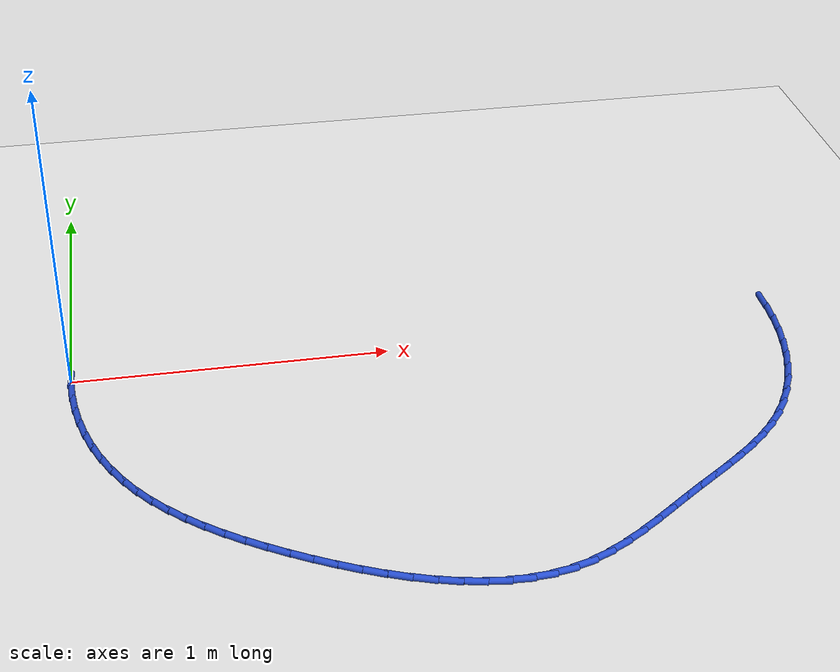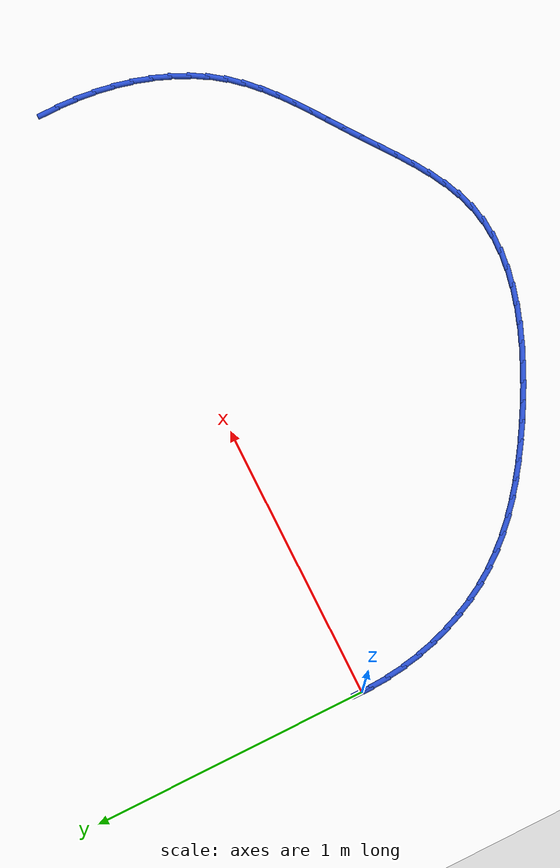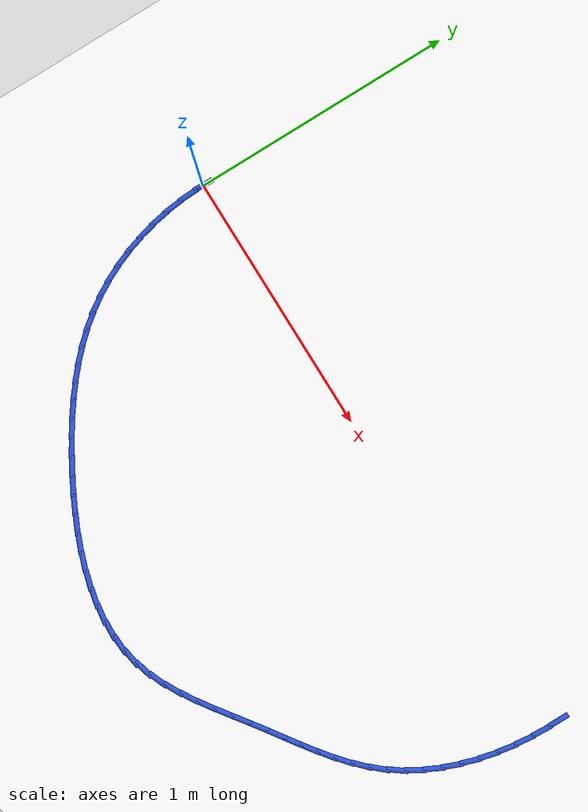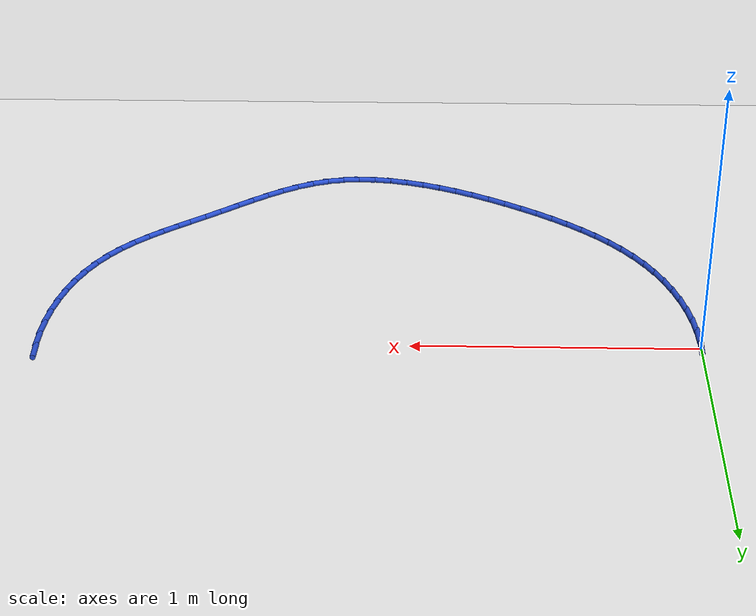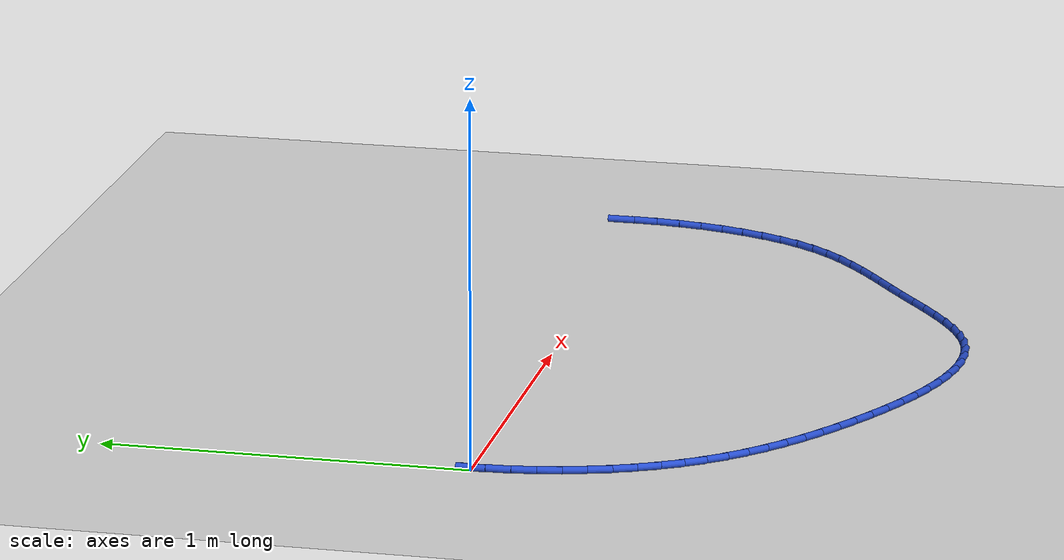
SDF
<sdf version="1.6">
 <world name="default">
  <model name="ground_plane">
   <static>1</static>
   <link name="link">
    <collision name="collision">
     <geometry><plane><normal>0 0 1</normal><size>100 100</size></plane></geometry>
     <surface><friction><ode><mu>100</mu><mu2>50</mu2></ode></friction></surface>
    </collision>
    <visual name="visual">
     <cast_shadows>0</cast_shadows>
     <geometry><plane><normal>0 0 1</normal><size>100 100</size></plane></geometry>
     <material>
      <script><uri>file://media/materials/scripts/gazebo.material</uri><name>Gazebo/WhiteGlow</name></script>
     </material>
    </visual>
   </link>
  </model>
  <model name="line">
   <link name="link_0">
    <pose>-4.163336342344337e-17 -1.5265566588595902e-16 0.01 0 1.57 1.5430811207808763</pose>
    <collision name="collision">
     <geometry><cylinder><radius>0.01</radius><length>0.08</length></cylinder></geometry>
    </collision>
    <visual name="visual">
     <material>
      <script><name>Gazebo/Blue</name><uri>file://media/materials/scripts/gazebo.material</uri></script>
     </material>
     <geometry><cylinder><radius>0.01</radius><length>0.08</length></cylinder></geometry>
    </visual>
   </link>
   <link name="link_56">
    <pose>2.2814381812492193 0.06441651069734236 0.01 0 1.57 1.5617721494303705</pose>
    <collision name="collision">
     <geometry><cylinder><radius>0.01</radius><length>0.08</length></cylinder></geometry>
    </collision>
    <visual name="visual">
     <material>
      <script><name>Gazebo/Blue</name><uri>file://media/materials/scripts/gazebo.material</uri></script>
     </material>
     <geometry><cylinder><radius>0.01</radius><length>0.08</length></cylinder></geometry>
    </visual>
   </link>
   <link name="link_57">
    <pose>2.2808145618509124 -0.004687014722742973 0.01 0 1.57 1.5036611949459746</pose>
    <collision name="collision">
     <geometry><cylinder><radius>0.01</radius><length>0.08</length></cylinder></geometry>
    </collision>
    <visual name="visual">
     <material>
      <script><name>Gazebo/Blue</name><uri>file://media/materials/scripts/gazebo.material</uri></script>
     </material>
     <geometry><cylinder><radius>0.01</radius><length>0.08</length></cylinder></geometry>
    </visual>
   </link>
   <link name="link_58">
    <pose>2.276183887656488 -0.07355878074455842 0.01 0 1.57 1.4441814514546485</pose>
    <collision name="collision">
     <geometry><cylinder><radius>0.01</radius><length>0.08</length></cylinder></geometry>
    </collision>
    <visual name="visual">
     <material>
      <script><name>Gazebo/Blue</name><uri>file://media/materials/scripts/gazebo.material</uri></script>
     </material>
     <geometry><cylinder><radius>0.01</radius><length>0.08</length></cylinder></geometry>
    </visual>
   </link>
   <link name="link_59">
    <pose>2.2675044048600053 -0.14174233279047266 0.01 0 1.57 1.3825642550640092</pose>
    <collision name="collision">
     <geometry><cylinder><radius>0.01</radius><length>0.08</length></cylinder></geometry>
    </collision>
    <visual name="visual">
     <material>
      <script><name>Gazebo/Blue</name><uri>file://media/materials/scripts/gazebo.material</uri></script>
     </material>
     <geometry><cylinder><radius>0.01</radius><length>0.08</length></cylinder></geometry>
    </visual>
   </link>
   <link name="link_60">
    <pose>2.254734359655526 -0.20878121628285123 0.01 0 1.57 1.318024321389243</pose>
    <collision name="collision">
     <geometry><cylinder><radius>0.01</radius><length>0.08</length></cylinder></geometry>
    </collision>
    <visual name="visual">
     <material>
      <script><name>Gazebo/Blue</name><uri>file://media/materials/scripts/gazebo.material</uri></script>
     </material>
     <geometry><cylinder><radius>0.01</radius><length>0.08</length></cylinder></geometry>
    </visual>
   </link>
   <link name="link_61">
    <pose>2.237831998237106 -0.2742189766440627 0.01 0 1.57 1.2497601482608407</pose>
    <collision name="collision">
     <geometry><cylinder><radius>0.01</radius><length>0.08</length></cylinder></geometry>
    </collision>
    <visual name="visual">
     <material>
      <script><name>Gazebo/Blue</name><uri>file://media/materials/scripts/gazebo.material</uri></script>
     </material>
     <geometry><cylinder><radius>0.01</radius><length>0.08</length></cylinder></geometry>
    </visual>
   </link>
   <link name="link_62">
    <pose>2.2167555667988084 -0.33759915929647255 0.01 0 1.57 1.17696649964657</pose>
    <collision name="collision">
     <geometry><cylinder><radius>0.01</radius><length>0.08</length></cylinder></geometry>
    </collision>
    <visual name="visual">
     <material>
      <script><name>Gazebo/Blue</name><uri>file://media/materials/scripts/gazebo.material</uri></script>
     </material>
     <geometry><cylinder><radius>0.01</radius><length>0.08</length></cylinder></geometry>
    </visual>
   </link>
   <link name="link_63">
    <pose>2.19146331153469 -0.39846530966244953 0.01 0 1.57 1.0988649339673175</pose>
    <collision name="collision">
     <geometry><cylinder><radius>0.01</radius><length>0.08</length></cylinder></geometry>
    </collision>
    <visual name="visual">
     <material>
      <script><name>Gazebo/Blue</name><uri>file://media/materials/scripts/gazebo.material</uri></script>
     </material>
     <geometry><cylinder><radius>0.01</radius><length>0.08</length></cylinder></geometry>
    </visual>
   </link>
   <link name="link_64">
    <pose>2.1619134786388132 -0.45636097316435903 0.01 0 1.57 1.0147594966064652</pose>
    <collision name="collision">
     <geometry><cylinder><radius>0.01</radius><length>0.08</length></cylinder></geometry>
    </collision>
    <visual name="visual">
     <material>
      <script><name>Gazebo/Blue</name><uri>file://media/materials/scripts/gazebo.material</uri></script>
     </material>
     <geometry><cylinder><radius>0.01</radius><length>0.08</length></cylinder></geometry>
    </visual>
   </link>
   <link name="link_65">
    <pose>2.128064314305236 -0.510829695224569 0.01 0 1.57 0.9241846543500171</pose>
    <collision name="collision">
     <geometry><cylinder><radius>0.01</radius><length>0.08</length></cylinder></geometry>
    </collision>
    <visual name="visual">
     <material>
      <script><name>Gazebo/Blue</name><uri>file://media/materials/scripts/gazebo.material</uri></script>
     </material>
     <geometry><cylinder><radius>0.01</radius><length>0.08</length></cylinder></geometry>
    </visual>
   </link>
   <link name="link_66">
    <pose>2.0898761337555207 -0.5614186678388631 0.01 0 1.57 0.8336782516382119</pose>
    <collision name="collision">
     <geometry><cylinder><radius>0.01</radius><length>0.08</length></cylinder></geometry>
    </collision>
    <visual name="visual">
     <material>
      <script><name>Gazebo/Blue</name><uri>file://media/materials/scripts/gazebo.material</uri></script>
     </material>
     <geometry><cylinder><radius>0.01</radius><length>0.08</length></cylinder></geometry>
    </visual>
   </link>
   <link name="link_67">
    <pose>2.047530192281999 -0.6080644805278659 0.01 0 1.57 0.7569641015591924</pose>
    <collision name="collision">
     <geometry><cylinder><radius>0.01</radius><length>0.08</length></cylinder></geometry>
    </collision>
    <visual name="visual">
     <material>
      <script><name>Gazebo/Blue</name><uri>file://media/materials/scripts/gazebo.material</uri></script>
     </material>
     <geometry><cylinder><radius>0.01</radius><length>0.08</length></cylinder></geometry>
    </visual>
   </link>
   <link name="link_68">
    <pose>2.0016218692333347 -0.6514335989363325 0.01 0 1.57 0.6965207830372508</pose>
    <collision name="collision">
     <geometry><cylinder><radius>0.01</radius><length>0.08</length></cylinder></geometry>
    </collision>
    <visual name="visual">
     <material>
      <script><name>Gazebo/Blue</name><uri>file://media/materials/scripts/gazebo.material</uri></script>
     </material>
     <geometry><cylinder><radius>0.01</radius><length>0.08</length></cylinder></geometry>
    </visual>
   </link>
   <link name="link_69">
    <pose>1.952792098835707 -0.692272777252805 0.01 0 1.57 0.6524966283607299</pose>
    <collision name="collision">
     <geometry><cylinder><radius>0.01</radius><length>0.08</length></cylinder></geometry>
    </collision>
    <visual name="visual">
     <material>
      <script><name>Gazebo/Blue</name><uri>file://media/materials/scripts/gazebo.material</uri></script>
     </material>
     <geometry><cylinder><radius>0.01</radius><length>0.08</length></cylinder></geometry>
    </visual>
   </link>
   <link name="link_70">
    <pose>1.9016818153152892 -0.7313287696658273 0.01 0 1.57 0.6245180330237221</pose>
    <collision name="collision">
     <geometry><cylinder><radius>0.01</radius><length>0.08</length></cylinder></geometry>
    </collision>
    <visual name="visual">
     <material>
      <script><name>Gazebo/Blue</name><uri>file://media/materials/scripts/gazebo.material</uri></script>
     </material>
     <geometry><cylinder><radius>0.01</radius><length>0.08</length></cylinder></geometry>
    </visual>
   </link>
   <link name="link_71">
    <pose>1.8489319528982588 -0.7693483303639415 0.01 0 1.57 0.61204743280614</pose>
    <collision name="collision">
     <geometry><cylinder><radius>0.01</radius><length>0.08</length></cylinder></geometry>
    </collision>
    <visual name="visual">
     <material>
      <script><name>Gazebo/Blue</name><uri>file://media/materials/scripts/gazebo.material</uri></script>
     </material>
     <geometry><cylinder><radius>0.01</radius><length>0.08</length></cylinder></geometry>
    </visual>
   </link>
   <link name="link_72">
    <pose>1.7951834458107916 -0.8070782135356921 0.01 0 1.57 0.614593075460079</pose>
    <collision name="collision">
     <geometry><cylinder><radius>0.01</radius><length>0.08</length></cylinder></geometry>
    </collision>
    <visual name="visual">
     <material>
      <script><name>Gazebo/Blue</name><uri>file://media/materials/scripts/gazebo.material</uri></script>
     </material>
     <geometry><cylinder><radius>0.01</radius><length>0.08</length></cylinder></geometry>
    </visual>
   </link>
   <link name="link_73">
    <pose>1.741077228279063 -0.8452651733696208 0.01 0 1.57 0.6279965144685967</pose>
    <collision name="collision">
     <geometry><cylinder><radius>0.01</radius><length>0.08</length></cylinder></geometry>
    </collision>
    <visual name="visual">
     <material>
      <script><name>Gazebo/Blue</name><uri>file://media/materials/scripts/gazebo.material</uri></script>
     </material>
     <geometry><cylinder><radius>0.01</radius><length>0.08</length></cylinder></geometry>
    </visual>
   </link>
   <link name="link_74">
    <pose>1.6871434715012825 -0.8844238123203613 0.01 0 1.57 0.6317996139104418</pose>
    <collision name="collision">
     <geometry><cylinder><radius>0.01</radius><length>0.08</length></cylinder></geometry>
    </collision>
    <visual name="visual">
     <material>
      <script><name>Gazebo/Blue</name><uri>file://media/materials/scripts/gazebo.material</uri></script>
     </material>
     <geometry><cylinder><radius>0.01</radius><length>0.08</length></cylinder></geometry>
    </visual>
   </link>
   <link name="link_75">
    <pose>1.6333159800516999 -0.9238187891714544 0.01 0 1.57 0.6192040309202103</pose>
    <collision name="collision">
     <geometry><cylinder><radius>0.01</radius><length>0.08</length></cylinder></geometry>
    </collision>
    <visual name="visual">
     <material>
      <script><name>Gazebo/Blue</name><uri>file://media/materials/scripts/gazebo.material</uri></script>
     </material>
     <geometry><cylinder><radius>0.01</radius><length>0.08</length></cylinder></geometry>
    </visual>
   </link>
   <link name="link_76">
    <pose>1.5793287302101844 -0.9622959362633982 0.01 0 1.57 0.589647121297941</pose>
    <collision name="collision">
     <geometry><cylinder><radius>0.01</radius><length>0.08</length></cylinder></geometry>
    </collision>
    <visual name="visual">
     <material>
      <script><name>Gazebo/Blue</name><uri>file://media/materials/scripts/gazebo.material</uri></script>
     </material>
     <geometry><cylinder><radius>0.01</radius><length>0.08</length></cylinder></geometry>
    </visual>
   </link>
   <link name="link_77">
    <pose>1.524915553751871 -0.9987007830646375 0.01 0 1.57 0.5419514275626941</pose>
    <collision name="collision">
     <geometry><cylinder><radius>0.01</radius><length>0.08</length></cylinder></geometry>
    </collision>
    <visual name="visual">
     <material>
      <script><name>Gazebo/Blue</name><uri>file://media/materials/scripts/gazebo.material</uri></script>
     </material>
     <geometry><cylinder><radius>0.01</radius><length>0.08</length></cylinder></geometry>
    </visual>
   </link>
   <link name="link_78">
    <pose>1.4698102824518904 -1.0318788590436174 0.01 0 1.57 0.47450506270873877</pose>
    <collision name="collision">
     <geometry><cylinder><radius>0.01</radius><length>0.08</length></cylinder></geometry>
    </collision>
    <visual name="visual">
     <material>
      <script><name>Gazebo/Blue</name><uri>file://media/materials/scripts/gazebo.material</uri></script>
     </material>
     <geometry><cylinder><radius>0.01</radius><length>0.08</length></cylinder></geometry>
    </visual>
   </link>
   <link name="link_79">
    <pose>1.4137467480853771 -1.0606756936687836 0.01 0 1.57 0.3857011634271887</pose>
    <collision name="collision">
     <geometry><cylinder><radius>0.01</radius><length>0.08</length></cylinder></geometry>
    </collision>
    <visual name="visual">
     <material>
      <script><name>Gazebo/Blue</name><uri>file://media/materials/scripts/gazebo.material</uri></script>
     </material>
     <geometry><cylinder><radius>0.01</radius><length>0.08</length></cylinder></geometry>
    </visual>
   </link>
   <link name="link_80">
    <pose>1.3564587824274619 -1.083936816408581 0.01 0 1.57 0.2750132383175224</pose>
    <collision name="collision">
     <geometry><cylinder><radius>0.01</radius><length>0.08</length></cylinder></geometry>
    </collision>
    <visual name="visual">
     <material>
      <script><name>Gazebo/Blue</name><uri>file://media/materials/scripts/gazebo.material</uri></script>
     </material>
     <geometry><cylinder><radius>0.01</radius><length>0.08</length></cylinder></geometry>
    </visual>
   </link>
   <link name="link_81">
    <pose>1.2976844342233125 -1.1005207573939655 0.01 0 1.57 0.15495833464324846</pose>
    <collision name="collision">
     <geometry><cylinder><radius>0.01</radius><length>0.08</length></cylinder></geometry>
    </collision>
    <visual name="visual">
     <material>
      <script><name>Gazebo/Blue</name><uri>file://media/materials/scripts/gazebo.material</uri></script>
     </material>
     <geometry><cylinder><radius>0.01</radius><length>0.08</length></cylinder></geometry>
    </visual>
   </link>
   <link name="link_82">
    <pose>1.2373744618701683 -1.109941817695027 0.01 0 1.57 0.044189773364436635</pose>
    <collision name="collision">
     <geometry><cylinder><radius>0.01</radius><length>0.08</length></cylinder></geometry>
    </collision>
    <visual name="visual">
     <material>
      <script><name>Gazebo/Blue</name><uri>file://media/materials/scripts/gazebo.material</uri></script>
     </material>
     <geometry><cylinder><radius>0.01</radius><length>0.08</length></cylinder></geometry>
    </visual>
   </link>
   <link name="link_83">
    <pose>1.1757880251789468 -1.1126650812105052 0.01 0 1.57 -0.05483322632363462</pose>
    <collision name="collision">
     <geometry><cylinder><radius>0.01</radius><length>0.08</length></cylinder></geometry>
    </collision>
    <visual name="visual">
     <material>
      <script><name>Gazebo/Blue</name><uri>file://media/materials/scripts/gazebo.material</uri></script>
     </material>
     <geometry><cylinder><radius>0.01</radius><length>0.08</length></cylinder></geometry>
    </visual>
   </link>
   <link name="link_84">
    <pose>1.1132084710384522 -1.109230199131331 0.01 0 1.57 -0.14208355020277996</pose>
    <collision name="collision">
     <geometry><cylinder><radius>0.01</radius><length>0.08</length></cylinder></geometry>
    </collision>
    <visual name="visual">
     <material>
      <script><name>Gazebo/Blue</name><uri>file://media/materials/scripts/gazebo.material</uri></script>
     </material>
     <geometry><cylinder><radius>0.01</radius><length>0.08</length></cylinder></geometry>
    </visual>
   </link>
   <link name="link_85">
    <pose>1.0499191463374835 -1.100176822648433 0.01 0 1.57 -0.21826755482756602</pose>
    <collision name="collision">
     <geometry><cylinder><radius>0.01</radius><length>0.08</length></cylinder></geometry>
    </collision>
    <visual name="visual">
     <material>
      <script><name>Gazebo/Blue</name><uri>file://media/materials/scripts/gazebo.material</uri></script>
     </material>
     <geometry><cylinder><radius>0.01</radius><length>0.08</length></cylinder></geometry>
    </visual>
   </link>
   <link name="link_86">
    <pose>0.9862033979648447 -1.0860446029527424 0.01 0 1.57 -0.2844567059909301</pose>
    <collision name="collision">
     <geometry><cylinder><radius>0.01</radius><length>0.08</length></cylinder></geometry>
    </collision>
    <visual name="visual">
     <material>
      <script><name>Gazebo/Blue</name><uri>file://media/materials/scripts/gazebo.material</uri></script>
     </material>
     <geometry><cylinder><radius>0.01</radius><length>0.08</length></cylinder></geometry>
    </visual>
   </link>
   <link name="link_87">
    <pose>0.9223445728093345 -1.067373191235188 0.01 0 1.57 -0.34183096084843745</pose>
    <collision name="collision">
     <geometry><cylinder><radius>0.01</radius><length>0.08</length></cylinder></geometry>
    </collision>
    <visual name="visual">
     <material>
      <script><name>Gazebo/Blue</name><uri>file://media/materials/scripts/gazebo.material</uri></script>
     </material>
     <geometry><cylinder><radius>0.01</radius><length>0.08</length></cylinder></geometry>
    </visual>
   </link>
   <link name="link_88">
    <pose>0.8586260177597571 -1.0447022386867006 0.01 0 1.57 -0.39152826301700994</pose>
    <collision name="collision">
     <geometry><cylinder><radius>0.01</radius><length>0.08</length></cylinder></geometry>
    </collision>
    <visual name="visual">
     <material>
      <script><name>Gazebo/Blue</name><uri>file://media/materials/scripts/gazebo.material</uri></script>
     </material>
     <geometry><cylinder><radius>0.01</radius><length>0.08</length></cylinder></geometry>
    </visual>
   </link>
   <link name="link_89">
    <pose>0.7953310797049116 -1.0185713964982097 0.01 0 1.57 -0.43457003035183933</pose>
    <collision name="collision">
     <geometry><cylinder><radius>0.01</radius><length>0.08</length></cylinder></geometry>
    </collision>
    <visual name="visual">
     <material>
      <script><name>Gazebo/Blue</name><uri>file://media/materials/scripts/gazebo.material</uri></script>
     </material>
     <geometry><cylinder><radius>0.01</radius><length>0.08</length></cylinder></geometry>
    </visual>
   </link>
   <link name="link_90">
    <pose>0.7327431055336016 -0.9895203158606453 0.01 0 1.57 -0.4718327524137369</pose>
    <collision name="collision">
     <geometry><cylinder><radius>0.01</radius><length>0.08</length></cylinder></geometry>
    </collision>
    <visual name="visual">
     <material>
      <script><name>Gazebo/Blue</name><uri>file://media/materials/scripts/gazebo.material</uri></script>
     </material>
     <geometry><cylinder><radius>0.01</radius><length>0.08</length></cylinder></geometry>
    </visual>
   </link>
   <link name="link_91">
    <pose>0.6711454421346268 -0.958088647964937 0.01 0 1.57 -0.5040438727650799</pose>
    <collision name="collision">
     <geometry><cylinder><radius>0.01</radius><length>0.08</length></cylinder></geometry>
    </collision>
    <visual name="visual">
     <material>
      <script><name>Gazebo/Blue</name><uri>file://media/materials/scripts/gazebo.material</uri></script>
     </material>
     <geometry><cylinder><radius>0.01</radius><length>0.08</length></cylinder></geometry>
    </visual>
   </link>
   <link name="link_92">
    <pose>0.6108214363967902 -0.9248160440020151 0.01 0 1.57 -0.5320540361409265</pose>
    <collision name="collision">
     <geometry><cylinder><radius>0.01</radius><length>0.08</length></cylinder></geometry>
    </collision>
    <visual name="visual">
     <material>
      <script><name>Gazebo/Blue</name><uri>file://media/materials/scripts/gazebo.material</uri></script>
     </material>
     <geometry><cylinder><radius>0.01</radius><length>0.08</length></cylinder></geometry>
    </visual>
   </link>
   <link name="link_93">
    <pose>0.5520529592481795 -0.8902202447701182 0.01 0 1.57 -0.5610402925807335</pose>
    <collision name="collision">
     <geometry><cylinder><radius>0.01</radius><length>0.08</length></cylinder></geometry>
    </collision>
    <visual name="visual">
     <material>
      <script><name>Gazebo/Blue</name><uri>file://media/materials/scripts/gazebo.material</uri></script>
     </material>
     <geometry><cylinder><radius>0.01</radius><length>0.08</length></cylinder></geometry>
    </visual>
   </link>
   <link name="link_94">
    <pose>0.4950955587651259 -0.8544282326863247 0.01 0 1.57 -0.5953903360924307</pose>
    <collision name="collision">
     <geometry><cylinder><radius>0.01</radius><length>0.08</length></cylinder></geometry>
    </collision>
    <visual name="visual">
     <material>
      <script><name>Gazebo/Blue</name><uri>file://media/materials/scripts/gazebo.material</uri></script>
     </material>
     <geometry><cylinder><radius>0.01</radius><length>0.08</length></cylinder></geometry>
    </visual>
   </link>
   <link name="link_95">
    <pose>0.44018210662004353 -0.8172303627017327 0.01 0 1.57 -0.6355061304206593</pose>
    <collision name="collision">
     <geometry><cylinder><radius>0.01</radius><length>0.08</length></cylinder></geometry>
    </collision>
    <visual name="visual">
     <material>
      <script><name>Gazebo/Blue</name><uri>file://media/materials/scripts/gazebo.material</uri></script>
     </material>
     <geometry><cylinder><radius>0.01</radius><length>0.08</length></cylinder></geometry>
    </visual>
   </link>
   <link name="link_96">
    <pose>0.3875447329011524 -0.7784059810726932 0.01 0 1.57 -0.6816144226916353</pose>
    <collision name="collision">
     <geometry><cylinder><radius>0.01</radius><length>0.08</length></cylinder></geometry>
    </collision>
    <visual name="visual">
     <material>
      <script><name>Gazebo/Blue</name><uri>file://media/materials/scripts/gazebo.material</uri></script>
     </material>
     <geometry><cylinder><radius>0.01</radius><length>0.08</length></cylinder></geometry>
    </visual>
   </link>
   <link name="link_97">
    <pose>0.3374155676966706 -0.7377344340555556 0.01 0 1.57 -0.7338566596417071</pose>
    <collision name="collision">
     <geometry><cylinder><radius>0.01</radius><length>0.08</length></cylinder></geometry>
    </collision>
    <visual name="visual">
     <material>
      <script><name>Gazebo/Blue</name><uri>file://media/materials/scripts/gazebo.material</uri></script>
     </material>
     <geometry><cylinder><radius>0.01</radius><length>0.08</length></cylinder></geometry>
    </visual>
   </link>
   <link name="link_98">
    <pose>0.29002674109481635 -0.6949950679066698 0.01 0 1.57 -0.7922345106196313</pose>
    <collision name="collision">
     <geometry><cylinder><radius>0.01</radius><length>0.08</length></cylinder></geometry>
    </collision>
    <visual name="visual">
     <material>
      <script><name>Gazebo/Blue</name><uri>file://media/materials/scripts/gazebo.material</uri></script>
     </material>
     <geometry><cylinder><radius>0.01</radius><length>0.08</length></cylinder></geometry>
    </visual>
   </link>
   <link name="link_99">
    <pose>0.24561038318380965 -0.6499672288823867 0.01 0 1.57 -0.8565488116700236</pose>
    <collision name="collision">
     <geometry><cylinder><radius>0.01</radius><length>0.08</length></cylinder></geometry>
    </collision>
    <visual name="visual">
     <material>
      <script><name>Gazebo/Blue</name><uri>file://media/materials/scripts/gazebo.material</uri></script>
     </material>
     <geometry><cylinder><radius>0.01</radius><length>0.08</length></cylinder></geometry>
    </visual>
   </link>
   <link name="link_100">
    <pose>0.20439862405186832 -0.6024302632390554 0.01 0 1.57 -0.9263413677820536</pose>
    <collision name="collision">
     <geometry><cylinder><radius>0.01</radius><length>0.08</length></cylinder></geometry>
    </collision>
    <visual name="visual">
     <material>
      <script><name>Gazebo/Blue</name><uri>file://media/materials/scripts/gazebo.material</uri></script>
     </material>
     <geometry><cylinder><radius>0.01</radius><length>0.08</length></cylinder></geometry>
    </visual>
   </link>
   <link name="link_101">
    <pose>0.16662359378721217 -0.5521635172330273 0.01 0 1.57 -1.000317891303102</pose>
    <collision name="collision">
     <geometry><cylinder><radius>0.01</radius><length>0.08</length></cylinder></geometry>
    </collision>
    <visual name="visual">
     <material>
      <script><name>Gazebo/Blue</name><uri>file://media/materials/scripts/gazebo.material</uri></script>
     </material>
     <geometry><cylinder><radius>0.01</radius><length>0.08</length></cylinder></geometry>
    </visual>
   </link>
   <link name="link_102">
    <pose>0.13250374805167797 -0.4989878329604433 0.01 0 1.57 -1.0735947512454491</pose>
    <collision name="collision">
     <geometry><cylinder><radius>0.01</radius><length>0.08</length></cylinder></geometry>
    </collision>
    <visual name="visual">
     <material>
      <script><name>Gazebo/Blue</name><uri>file://media/materials/scripts/gazebo.material</uri></script>
     </material>
     <geometry><cylinder><radius>0.01</radius><length>0.08</length></cylinder></geometry>
    </visual>
   </link>
   <link name="link_103">
    <pose>0.10214921867495011 -0.44305276746749356 0.01 0 1.57 -1.1443049308768094</pose>
    <collision name="collision">
     <geometry><cylinder><radius>0.01</radius><length>0.08</length></cylinder></geometry>
    </collision>
    <visual name="visual">
     <material>
      <script><name>Gazebo/Blue</name><uri>file://media/materials/scripts/gazebo.material</uri></script>
     </material>
     <geometry><cylinder><radius>0.01</radius><length>0.08</length></cylinder></geometry>
    </visual>
   </link>
   <link name="link_104">
    <pose>0.07561859197100278 -0.3846642956567518 0.01 0 1.57 -1.2127811925994343</pose>
    <collision name="collision">
     <geometry><cylinder><radius>0.01</radius><length>0.08</length></cylinder></geometry>
    </collision>
    <visual name="visual">
     <material>
      <script><name>Gazebo/Blue</name><uri>file://media/materials/scripts/gazebo.material</uri></script>
     </material>
     <geometry><cylinder><radius>0.01</radius><length>0.08</length></cylinder></geometry>
    </visual>
   </link>
   <link name="link_105">
    <pose>0.052970139584913076 -0.3241293473118145 0.01 0 1.57 -1.2794033991162201</pose>
    <collision name="collision">
     <geometry><cylinder><radius>0.01</radius><length>0.08</length></cylinder></geometry>
    </collision>
    <visual name="visual">
     <material>
      <script><name>Gazebo/Blue</name><uri>file://media/materials/scripts/gazebo.material</uri></script>
     </material>
     <geometry><cylinder><radius>0.01</radius><length>0.08</length></cylinder></geometry>
    </visual>
   </link>
   <link name="link_106">
    <pose>0.034262133161756914 -0.26175485221627515 0.01 0 1.57 -1.3445696240242018</pose>
    <collision name="collision">
     <geometry><cylinder><radius>0.01</radius><length>0.08</length></cylinder></geometry>
    </collision>
    <visual name="visual">
     <material>
      <script><name>Gazebo/Blue</name><uri>file://media/materials/scripts/gazebo.material</uri></script>
     </material>
     <geometry><cylinder><radius>0.01</radius><length>0.08</length></cylinder></geometry>
    </visual>
   </link>
   <link name="link_107">
    <pose>0.019552844346611243 -0.19784774015372986 0.01 0 1.57 -1.408684144273762</pose>
    <collision name="collision">
     <geometry><cylinder><radius>0.01</radius><length>0.08</length></cylinder></geometry>
    </collision>
    <visual name="visual">
     <material>
      <script><name>Gazebo/Blue</name><uri>file://media/materials/scripts/gazebo.material</uri></script>
     </material>
     <geometry><cylinder><radius>0.01</radius><length>0.08</length></cylinder></geometry>
    </visual>
   </link>
   <link name="link_108">
    <pose>0.0089005447845521 -0.13271494090777183 0.01 0 1.57 -1.472148837799412</pose>
    <collision name="collision">
     <geometry><cylinder><radius>0.01</radius><length>0.08</length></cylinder></geometry>
    </collision>
    <visual name="visual">
     <material>
      <script><name>Gazebo/Blue</name><uri>file://media/materials/scripts/gazebo.material</uri></script>
     </material>
     <geometry><cylinder><radius>0.01</radius><length>0.08</length></cylinder></geometry>
    </visual>
   </link>
   <link name="link_109">
    <pose>0.002363506120656245 -0.06666338426199753 0.01 0 1.57 -1.5353568336448469</pose>
    <collision name="collision">
     <geometry><cylinder><radius>0.01</radius><length>0.08</length></cylinder></geometry>
    </collision>
    <visual name="visual">
     <material>
      <script><name>Gazebo/Blue</name><uri>file://media/materials/scripts/gazebo.material</uri></script>
     </material>
     <geometry><cylinder><radius>0.01</radius><length>0.08</length></cylinder></geometry>
    </visual>
   </link>
   <link name="link_110">
    <pose>-2.7755575615628914e-17 -1.249000902703301e-16 0.01 0 1.57 1.542905308407133</pose>
    <collision name="collision">
     <geometry><cylinder><radius>0.01</radius><length>0.08</length></cylinder></geometry>
    </collision>
    <visual name="visual">
     <material>
      <script><name>Gazebo/Blue</name><uri>file://media/materials/scripts/gazebo.material</uri></script>
     </material>
     <geometry><cylinder><radius>0.01</radius><length>0.08</length></cylinder></geometry>
    </visual>
   </link>
  </model>
 </world>
</sdf>
